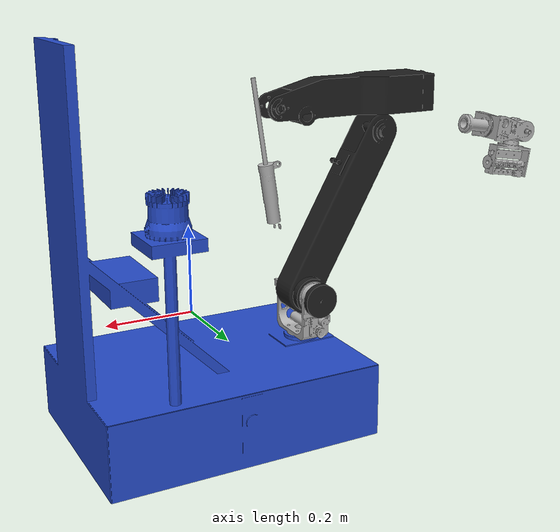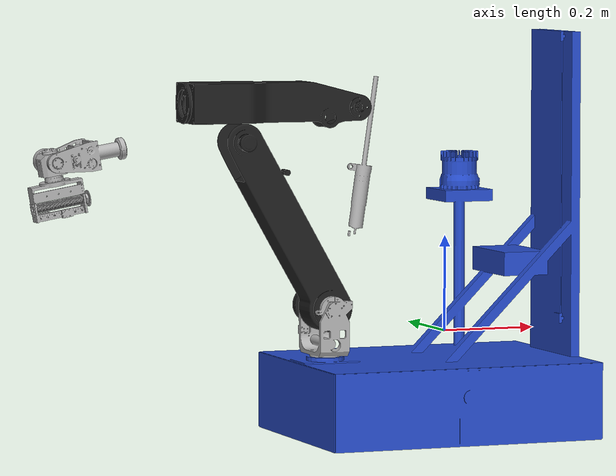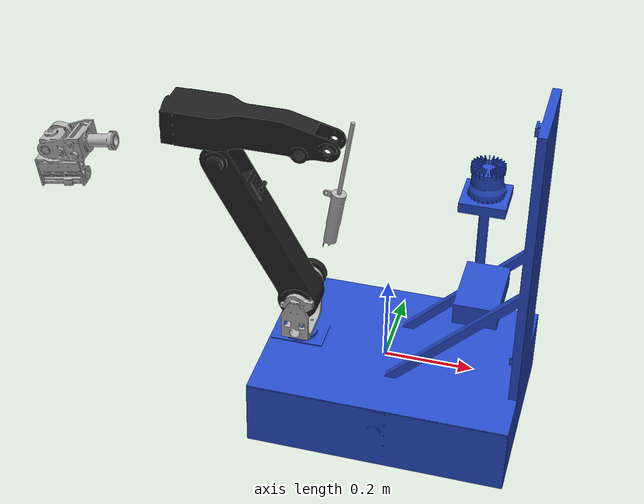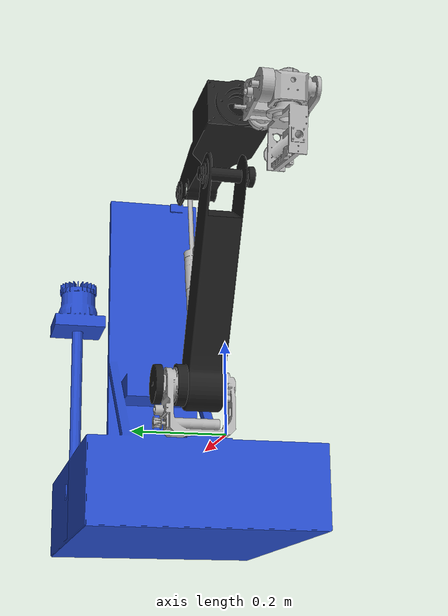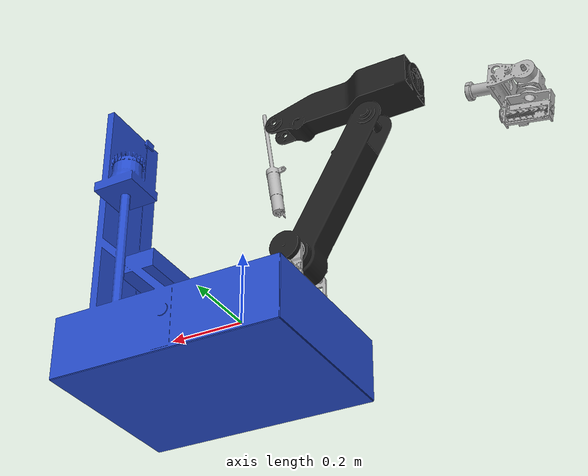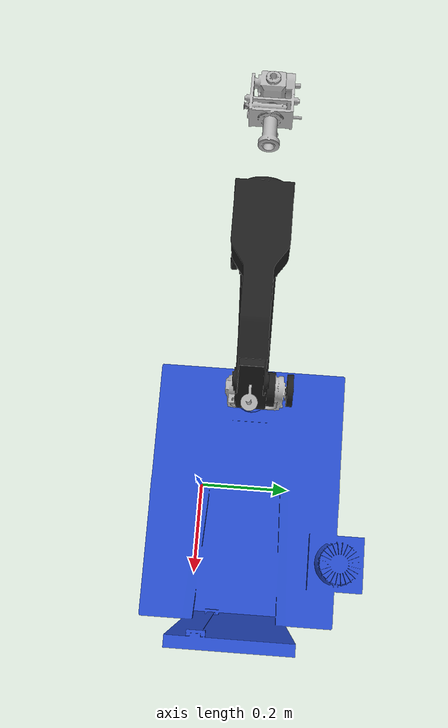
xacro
<?xml version="1.0"?>
<robot xmlns:xacro="http://www.ros.org/wiki/xacro" name="kerby">
    <xacro:arg name="initial_positions_file" default="initial_positions.yaml" />

    <!-- Import kerby urdf file -->
    <xacro:include filename="$(find kerby_description)/urdf/kerby_truncated.urdf.xacro" />

    <!-- Import control_xacro -->
    <xacro:include filename="kerby_truncated.ros2_control.xacro" />

    <xacro:kerby_arm_ros2_control name="KerbyArmSystem" initial_positions_file="$(arg initial_positions_file)"/>

</robot>

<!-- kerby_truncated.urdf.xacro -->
<robot name="kerby" xmlns:xacro="http://www.ros.org/wiki/xacro">

<xacro:include filename="$(find kerby_description)/urdf/materials.xacro" />
<xacro:include filename="$(find kerby_description)/urdf/kerby.trans" />
<xacro:include filename="$(find kerby_description)/urdf/kerby.gazebo" />

<xacro:property name="rpm_to_Radps" value="${2*pi/60.0}" />     <!-- rotations per minute to Rad per second conversion -->
<xacro:property name="velocity_scaling" value="2.0" />     <!-- allows to scale all max velocities down at once -->

<xacro:macro name="aaa_joint_limits" params="lower:=0.0 upper:=0.0 velocity:=${rpm_to_Radps} effort:=100.0">
  <limit lower="${lower}" upper="${upper}" velocity="${velocity}" effort="${effort}"/>
</xacro:macro>

<xacro:property name="joint1_limits">
  <xacro:aaa_joint_limits lower="${-1.5*pi}" upper="${1.5*pi}" velocity="${3 * rpm_to_Radps * velocity_scaling}" />
</xacro:property>

<xacro:property name="joint2_limits">
  <xacro:aaa_joint_limits lower="${-pi}" upper="${pi/2}" velocity="${1 * rpm_to_Radps * velocity_scaling}" />
</xacro:property>

<xacro:property name="joint3_limits">
  <xacro:aaa_joint_limits lower="${-pi/4}" upper="${pi/4}" velocity="${1.5 * rpm_to_Radps * velocity_scaling}" />
</xacro:property>

<xacro:property name="joint4_limits">
  <xacro:aaa_joint_limits lower="${-2*pi}" upper="${2*pi}" velocity="${6 * rpm_to_Radps * velocity_scaling}" />
</xacro:property>

<xacro:property name="joint5_limits">
  <xacro:aaa_joint_limits lower="${-pi/2}" upper="${pi/2}" velocity="${2 * rpm_to_Radps * velocity_scaling}" />
</xacro:property>

<xacro:property name="joint6_limits">
  <xacro:aaa_joint_limits lower="${-pi}" upper="${pi}" velocity="${6 * rpm_to_Radps * velocity_scaling}" />
</xacro:property>

<link name="base_link">
  <inertial>
    <origin xyz="0.05362398614035063 0.01974617698532859 0.037120813316089823" rpy="0 0 0"/>
    <mass value="6.257043020156179"/>
    <inertia ixx="0.340644" iyy="0.466541" izz="0.402706" ixy="0.000337" iyz="0.00055" ixz="-0.092411"/>
  </inertial>
  <visual>
    <origin xyz="0 0 0" rpy="0 0 0"/>
    <geometry>
      <mesh filename="package://kerby_description/meshes/base_link.stl" scale="0.001 0.001 0.001"/>
    </geometry>
    <material name="blue"/>
  </visual>
  <collision>
    <origin xyz="0 0 0" rpy="0 0 0"/>
    <geometry>
      <mesh filename="package://kerby_description/meshes/base_link.stl" scale="0.001 0.001 0.001"/>
    </geometry>
  </collision>
</link>

<link name="hd_link2_1">
  <inertial>
    <origin xyz="0.007428383283974271 0.060838810370171845 0.14389716626077925" rpy="0 0 0"/>
    <mass value="2.4452075265656514"/>
    <inertia ixx="0.038674" iyy="0.03827" izz="0.003075" ixy="7.8e-05" iyz="0.001607" ixz="-0.00107"/>
  </inertial>
  <visual>
    <origin xyz="0.228643 0.037726 -0.152484" rpy="0 0 0"/>
    <geometry>
      <mesh filename="package://kerby_description/meshes/hd_link2_1.stl" scale="0.001 0.001 0.001"/>
    </geometry>
    <material name="black"/>
  </visual>
  <collision>
    <origin xyz="0.228643 0.037726 -0.152484" rpy="0 0 0"/>
    <geometry>
      <mesh filename="package://kerby_description/meshes/hd_link2_1.stl" scale="0.001 0.001 0.001"/>
    </geometry>
  </collision>
</link>

<link name="hd_link3_1">
  <inertial>
    <origin xyz="-0.18506431602380205 -0.028188690485378982 0.03515465538516083" rpy="0 0 0"/>
    <mass value="0.3993227194340243"/>
    <inertia ixx="0.000842" iyy="0.00625" izz="0.00637" ixy="4.5e-05" iyz="-5e-06" ixz="0.000238"/>
  </inertial>
  <visual>
    <origin xyz="0.2165 -0.050274 -0.552396" rpy="0 0 0"/>
    <geometry>
      <mesh filename="package://kerby_description/meshes/hd_link3_1.stl" scale="0.001 0.001 0.001"/>
    </geometry>
    <material name="black"/>
  </visual>
  <collision>
    <origin xyz="0.2165 -0.050274 -0.552396" rpy="0 0 0"/>
    <geometry>
      <mesh filename="package://kerby_description/meshes/hd_link3_1.stl" scale="0.001 0.001 0.001"/>
    </geometry>
  </collision>
</link>

<link name="hd_link4_1">
  <inertial>
    <origin xyz="-0.02651321084424607 0.002896584112952065 -0.0003217450612928996" rpy="0 0 0"/>
    <mass value="0.16590781468918114"/>
    <inertia ixx="0.000197" iyy="0.000349" izz="0.000476" ixy="3.9e-05" iyz="5e-06" ixz="4e-06"/>
  </inertial>
  <visual>
    <origin xyz="0.531508 -0.02063 -0.590536" rpy="0 0 0"/>
    <geometry>
      <mesh filename="package://kerby_description/meshes/hd_link4_1.stl" scale="0.001 0.001 0.001"/>
    </geometry>
    <material name="silver"/>
  </visual>
  <collision>
    <origin xyz="0.531508 -0.02063 -0.590536" rpy="0 0 0"/>
    <geometry>
      <mesh filename="package://kerby_description/meshes/hd_link4_1.stl" scale="0.001 0.001 0.001"/>
    </geometry>
  </collision>
</link>

<link name="hd_link5_1">
  <inertial>
    <origin xyz="-0.0032697164246294763 0.03846028201984416 -9.33050693235904e-05" rpy="0 0 0"/>
    <mass value="0.06877842327462745"/>
    <inertia ixx="4.9e-05" iyy="2.9e-05" izz="4.3e-05" ixy="1e-06" iyz="0.0" ixz="-0.0"/>
  </inertial>
  <visual>
    <origin xyz="0.625201 0.02137 -0.591679" rpy="0 0 0"/>
    <geometry>
      <mesh filename="package://kerby_description/meshes/hd_link5_1.stl" scale="0.001 0.001 0.001"/>
    </geometry>
    <material name="silver"/>
  </visual>
  <collision>
    <origin xyz="0.625201 0.02137 -0.591679" rpy="0 0 0"/>
    <geometry>
      <mesh filename="package://kerby_description/meshes/hd_link5_1.stl" scale="0.001 0.001 0.001"/>
    </geometry>
  </collision>
</link>

<link name="hd_link6_1">
  <inertial>
    <origin xyz="-0.03519419436746607 -0.0007187354689699374 0.0009221743273718497" rpy="0 0 0"/>
    <mass value="0.11153016933793788"/>
    <inertia ixx="0.000117" iyy="0.000166" izz="0.000263" ixy="-2e-06" iyz="-1e-06" ixz="1e-06"/>
  </inertial>
  <visual>
    <origin xyz="0.652201 -0.02059 -0.591797" rpy="0 0 0"/>
    <geometry>
      <mesh filename="package://kerby_description/meshes/hd_link6_1.stl" scale="0.001 0.001 0.001"/>
    </geometry>
    <material name="silver"/>
  </visual>
  <collision>
    <origin xyz="0.652201 -0.02059 -0.591797" rpy="0 0 0"/>
    <geometry>
      <mesh filename="package://kerby_description/meshes/hd_link6_1.stl" scale="0.001 0.001 0.001"/>
    </geometry>
  </collision>
</link>

<link name="hd_motor_j3_1">
  <inertial>
    <origin xyz="-0.3146867524268133 0.14188869096939155 0.25591208107402835" rpy="0 0 0"/>
    <mass value="0.11925838600046076"/>
    <inertia ixx="0.00051" iyy="0.000525" izz="2.9e-05" ixy="-0.0" iyz="-0.0" ixz="-8.7e-05"/>
  </inertial>
  <visual>
    <origin xyz="-0.173508 0.122615 -0.149258" rpy="0 0 0"/>
    <geometry>
      <mesh filename="package://kerby_description/meshes/hd_motor_j3_1.stl" scale="0.001 0.001 0.001"/>
    </geometry>
    <material name="silver"/>
  </visual>
  <collision>
    <origin xyz="-0.173508 0.122615 -0.149258" rpy="0 0 0"/>
    <geometry>
      <mesh filename="package://kerby_description/meshes/hd_motor_j3_1.stl" scale="0.001 0.001 0.001"/>
    </geometry>
  </collision>
</link>

<link name="hd_link1_1">
  <inertial>
    <origin xyz="0.0001907779404468346 0.014210297972432132 0.0484216801173539" rpy="0 0 0"/>
    <mass value="0.3391136619658369"/>
    <inertia ixx="0.001801" iyy="0.001217" izz="0.00078" ixy="1e-05" iyz="-0.000142" ixz="-8e-06"/>
  </inertial>
  <visual>
    <origin xyz="0.228643 -0.019974 -0.035484" rpy="0 0 0"/>
    <geometry>
      <mesh filename="package://kerby_description/meshes/hd_link1_1.stl" scale="0.001 0.001 0.001"/>
    </geometry>
    <material name="silver"/>
  </visual>
  <collision>
    <origin xyz="0.228643 -0.019974 -0.035484" rpy="0 0 0"/>
    <geometry>
      <mesh filename="package://kerby_description/meshes/hd_link1_1.stl" scale="0.001 0.001 0.001"/>
    </geometry>
  </collision>
</link>

<link name="fake_gripper">
</link>

<joint name="joint2" type="revolute">
  <origin xyz="0.0 -0.0577 0.117" rpy="0 0 0"/>
  <parent link="hd_link1_1"/>
  <child link="hd_link2_1"/>
  <axis xyz="0.0 1.0 0.0"/>
  <xacro:insert_block name="joint2_limits" />
</joint>

<joint name="joint3" type="revolute">
  <origin xyz="0.012143 0.088 0.399912" rpy="0 0 0"/>
  <parent link="hd_link2_1"/>
  <child link="hd_link3_1"/>
  <axis xyz="-0.0 1.0 0.0"/>
  <xacro:insert_block name="joint3_limits" />
</joint>

<joint name="joint4" type="revolute">
  <origin xyz="-0.315008 -0.029644 0.03814" rpy="0 0 0"/>
  <parent link="hd_link3_1"/>
  <child link="hd_link4_1"/>
  <axis xyz="0.999926 0.0 -0.012203"/>
  <xacro:insert_block name="joint4_limits" />
</joint>

<joint name="joint5" type="revolute">
  <origin xyz="-0.093693 -0.042 0.001143" rpy="0 0 0"/>
  <parent link="hd_link4_1"/>
  <child link="hd_link5_1"/>
  <axis xyz="0.0 -1.0 0.0"/>
  <xacro:insert_block name="joint5_limits" />
</joint>

<joint name="joint6" type="revolute">
  <origin xyz="-0.027 0.04196 0.000118" rpy="0 0 0"/>
  <parent link="hd_link5_1"/>
  <child link="hd_link6_1"/>
  <axis xyz="-0.99999 -0.0 0.00438"/>
  <xacro:insert_block name="joint6_limits" />
</joint>

<joint name="moteurJ3" type="fixed">
  <origin xyz="0.402151 -0.084889 -0.003226" rpy="0 0 0"/>
  <parent link="hd_link2_1"/>
  <child link="hd_motor_j3_1"/>
</joint>

<joint name="joint1" type="revolute">
  <origin xyz="-0.228643 0.019974 0.035484" rpy="0 0 0"/>
  <parent link="base_link"/>
  <child link="hd_link1_1"/>
  <axis xyz="-0.0 0.0 -1.0"/>
  <xacro:insert_block name="joint1_limits" />
</joint>

<joint name="fake_gripper_joint" type="fixed">
  <origin xyz="-0.12 0 0" rpy="0 0 0"/>
  <parent link="hd_link6_1"/>
  <child link="fake_gripper"/>
</joint>

</robot>

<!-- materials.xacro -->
<robot name="URDF" xmlns:xacro="http://www.ros.org/wiki/xacro" >

<material name="silver">
  <color rgba="0.700 0.700 0.700 1.000"/>
</material>

</robot>

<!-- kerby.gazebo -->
<robot name="kerby" xmlns:xacro="http://www.ros.org/wiki/xacro" >

<xacro:property name="body_color" value="Gazebo/Grey" />

<gazebo reference="chassis_link">
  <material>${body_color}</material>
  <mu1>0.2</mu1>
  <mu2>0.2</mu2>
  <gravity>true</gravity>
</gazebo>

<gazebo reference="steering1_link">
  <material>${body_color}</material>
  <mu1>0.2</mu1>
  <mu2>0.2</mu2>
</gazebo>

<gazebo reference="steering2_link">
  <material>${body_color}</material>
  <mu1>0.2</mu1>
  <mu2>0.2</mu2>
</gazebo>

<gazebo reference="steering3_link">
  <material>${body_color}</material>
  <mu1>0.2</mu1>
  <mu2>0.2</mu2>
</gazebo>

<gazebo reference="steering4_link">
  <material>${body_color}</material>
  <mu1>2</mu1>
  <mu2>2</mu2>
</gazebo>

<gazebo reference="wheel3_link">
  <material>${body_color}</material>
  <mu1>2</mu1>
  <mu2>2</mu2>
</gazebo>

<gazebo reference="wheel4_link">
  <material>${body_color}</material>
  <mu1>0.2</mu1>
  <mu2>0.2</mu2>
</gazebo>

<gazebo reference="wheel2_link">
  <material>${body_color}</material>
  <mu1>2</mu1>
  <mu2>2</mu2>
</gazebo>

<gazebo reference="wheel1_link">
  <material>${body_color}</material>
  <mu1>2</mu1>
  <mu2>2</mu2>
</gazebo>

<gazebo reference="caster_wheel">
  <material>Gazebo/Grey</material>
  <mu1>2</mu1>
  <mu2>2</mu2>
</gazebo>

<gazebo reference="caster_axis">
  <material>Gazebo/Grey</material>
  <mu1>0.2</mu1>
  <mu2>0.2</mu2>
</gazebo>

  <gazebo reference="lidar_axis">
        <material>Gazebo/LightGrey</material>
  </gazebo>

// <gazebo reference="hd_link2_1">
//   <material>${body_color}</material>
//   <mu1>0.2</mu1>
//   <mu2>0.2</mu2>
//   <selfCollide>true</selfCollide>
// </gazebo>

// <gazebo reference="hd_link3_1">
//   <material>${body_color}</material>
//   <mu1>0.2</mu1>
//   <mu2>0.2</mu2>
//   <selfCollide>true</selfCollide>
// </gazebo>

// <gazebo reference="hd_link4_1">
//   <material>${body_color}</material>
//   <mu1>0.2</mu1>
//   <mu2>0.2</mu2>
//   <selfCollide>true</selfCollide>
// </gazebo>

// <gazebo reference="hd_link5_1">
//   <material>${body_color}</material>
//   <mu1>0.2</mu1>
//   <mu2>0.2</mu2>
//   <selfCollide>true</selfCollide>
// </gazebo>

// <gazebo reference="hd_link6_1">
//   <material>${body_color}</material>
//   <mu1>0.2</mu1>
//   <mu2>0.2</mu2>
//   <selfCollide>true</selfCollide>
// </gazebo>

// <gazebo reference="hd_finger2_1">
//   <material>${body_color}</material>
//   <mu1>0.2</mu1>
//   <mu2>0.2</mu2>
//   <selfCollide>true</selfCollide>
// </gazebo>

// <gazebo reference="hd_finger1_1">
//   <material>${body_color}</material>
//   <mu1>0.2</mu1>
//   <mu2>0.2</mu2>
//   <selfCollide>true</selfCollide>
// </gazebo>

// <gazebo reference="hd_motor_j3_1">
//   <material>${body_color}</material>
//   <mu1>0.2</mu1>
//   <mu2>0.2</mu2>
//   <selfCollide>true</selfCollide>
// </gazebo>

<gazebo reference="right_leg">
  <material>${body_color}</material>
  <mu1>0.2</mu1>
  <mu2>0.2</mu2>
  <selfCollide>true</selfCollide>
</gazebo>

<gazebo reference="left_leg">
  <material>${body_color}</material>
  <mu1>0.2</mu1>
  <mu2>0.2</mu2>
  <selfCollide>true</selfCollide>
</gazebo>

// <gazebo reference="hd_link1_1">
//   <material>${body_color}</material>
//   <mu1>0.2</mu1>
//   <mu2>0.2</mu2>
//   <selfCollide>true</selfCollide>
// </gazebo>

</robot>
